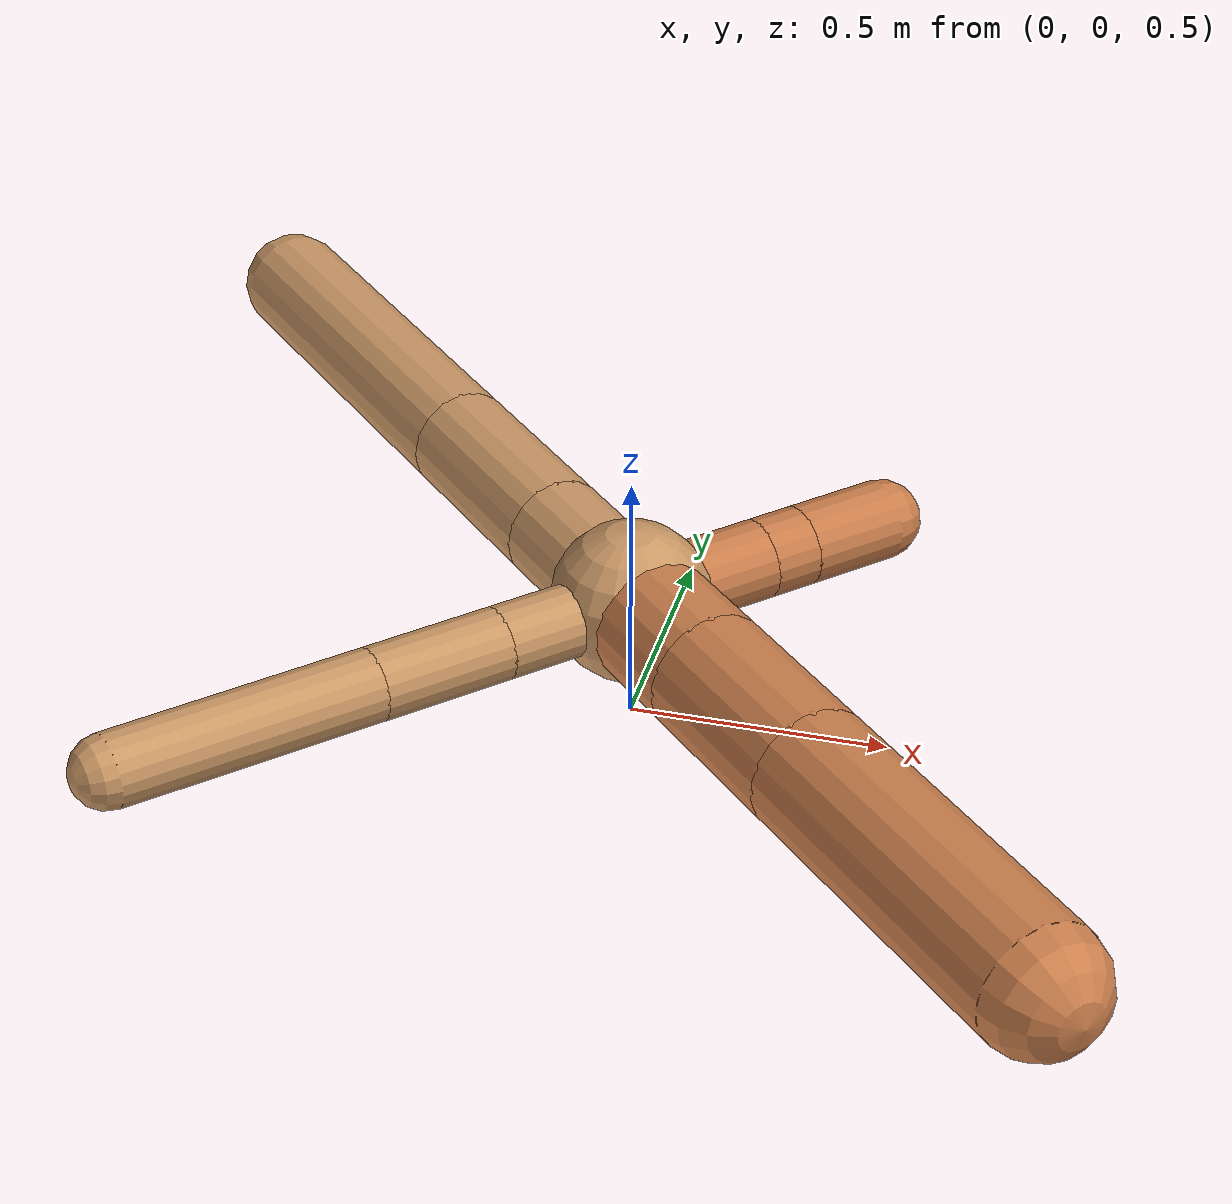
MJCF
<?xml version="1.0" ?>
<mujoco model="ant">

	<compiler angle="degree" coordinate="local" inertiafromgeom="true"/>

	<option integrator="RK4" timestep="0.01"/>

	<custom>

		<numeric data="0.0 0.0 0.55 1.0 0.0 0.0 0.0 0.0 1.0 0.0 -1.0 0.0 -1.0 0.0 1.0" name="init_qpos"/>

	</custom>

	<default>

		<joint armature="1" damping="1" limited="true"/>

		<geom conaffinity="0" condim="3" density="5.0" friction="1.5 0.1 0.1" margin="0.01" rgba="0.8 0.6 0.4 1"/>

	</default>

	<worldbody>

		<body name="torso" pos="0 0 0.75">

			<geom name="torso_geom" pos="0 0 0" size="0.15484425875286678" type="sphere"/>

			<!--joint armature="0" damping="0" limited="false" margin="0.01" name="root" pos="0 0 0" type="free"/-->

			<body name="front_left_leg" pos="0 0 0">

				<geom fromto="0 0 0 0.2 0.2 0" name="aux_1_geom" size="0.07830665506084654" type="capsule" rgba=".8 .5 .3 1"/>

				<body name="aux_1" pos="0.2 0.2 0">

					<joint axis="0 0 1" name="hip_1" pos="0.0 0.0 0.0" range="-40 40" type="hinge"/>

					<geom fromto="0 0 0 0.06612402458420157 0.06612402458420157 0" name="left_leg_geom" size="0.07830665506084654" type="capsule" rgba=".8 .5 .3 1"/>

					<body pos="0.06612402458420157 0.06612402458420157 0" name="front_left_foot">

						<joint axis="-1 1 0" name="ankle_1" pos="0.0 0.0 0.0" range="30 100" type="hinge"/>

						<geom fromto="0 0 0 0.13224804916840313 0.13224804916840313 0" name="left_ankle_geom" size="0.07830665506084654" type="capsule" rgba=".8 .5 .3 1"/>

					</body>

				</body>

			</body>

			<body name="front_right_leg" pos="0 0 0">

				<geom fromto="0 0 0 -0.2 0.2 0" name="aux_2_geom" size="0.10684997335632311" type="capsule"/>

				<body name="aux_2" pos="-0.2 0.2 0">

					<joint axis="0 0 1" name="hip_2" pos="0.0 0.0 0.0" range="-40 40" type="hinge"/>

					<geom fromto="0 0 0 -0.27181621485616886 0.27181621485616886 0" name="right_leg_geom" size="0.10684997335632311" type="capsule"/>

					<body pos="-0.27181621485616886 0.27181621485616886 0" name="front_right_foot">

						<joint axis="1 1 0" name="ankle_2" pos="0.0 0.0 0.0" range="-100 -30" type="hinge"/>

						<geom fromto="0 0 0 -0.5436324297123377 0.5436324297123377 0" name="right_ankle_geom" size="0.10684997335632311" type="capsule"/>

					</body>

				</body>

			</body>

			<body name="left_back_leg" pos="0 0 0">

				<geom fromto="0 0 0 -0.2 -0.2 0" name="aux_3_geom" size="0.07089172816639398" type="capsule"/>

				<body name="aux_3" pos="-0.2 -0.2 0">

					<joint axis="0 0 1" name="hip_3" pos="0.0 0.0 0.0" range="-40 40" type="hinge"/>

					<geom fromto="0 0 0 -0.18400791861295188 -0.18400791861295188 0" name="back_leg_geom" size="0.07089172816639398" type="capsule"/>

					<body pos="-0.18400791861295188 -0.18400791861295188 0" name="left_back_foot">

						<joint axis="-1 1 0" name="ankle_3" pos="0.0 0.0 0.0" range="-100 -30" type="hinge"/>

						<geom fromto="0 0 0 -0.36801583722590375 -0.36801583722590375 0" name="third_ankle_geom" size="0.07089172816639398" type="capsule"/>

					</body>

				</body>

			</body>

			<body name="right_back_leg" pos="0 0 0">

				<geom fromto="0 0 0 0.2 -0.2 0" name="aux_4_geom" size="0.1254555467633649" type="capsule" rgba=".8 .5 .3 1"/>

				<body name="aux_4" pos="0.2 -0.2 0">

					<joint axis="0 0 1" name="hip_4" pos="0.0 0.0 0.0" range="-40 40" type="hinge"/>

					<geom fromto="0 0 0 0.23745051911993703 -0.23745051911993703 0" name="rightback_leg_geom" size="0.1254555467633649" type="capsule" rgba=".8 .5 .3 1"/>

					<body pos="0.23745051911993703 -0.23745051911993703 0" name="right_back_foot">

						<joint axis="1 1 0" name="ankle_4" pos="0.0 0.0 0.0" range="30 100" type="hinge"/>

						<geom fromto="0 0 0 0.47490103823987406 -0.47490103823987406 0" name="fourth_ankle_geom" size="0.1254555467633649" type="capsule" rgba=".8 .5 .3 1"/>

					</body>

				</body>

			</body>

		</body>

	</worldbody>

	<actuator>

		<motor ctrllimited="true" ctrlrange="-1.0 1.0" joint="hip_4" gear="150"/>

		<motor ctrllimited="true" ctrlrange="-1.0 1.0" joint="ankle_4" gear="150"/>

		<motor ctrllimited="true" ctrlrange="-1.0 1.0" joint="hip_1" gear="150"/>

		<motor ctrllimited="true" ctrlrange="-1.0 1.0" joint="ankle_1" gear="150"/>

		<motor ctrllimited="true" ctrlrange="-1.0 1.0" joint="hip_2" gear="150"/>

		<motor ctrllimited="true" ctrlrange="-1.0 1.0" joint="ankle_2" gear="150"/>

		<motor ctrllimited="true" ctrlrange="-1.0 1.0" joint="hip_3" gear="150"/>

		<motor ctrllimited="true" ctrlrange="-1.0 1.0" joint="ankle_3" gear="150"/>

	</actuator>

</mujoco>
